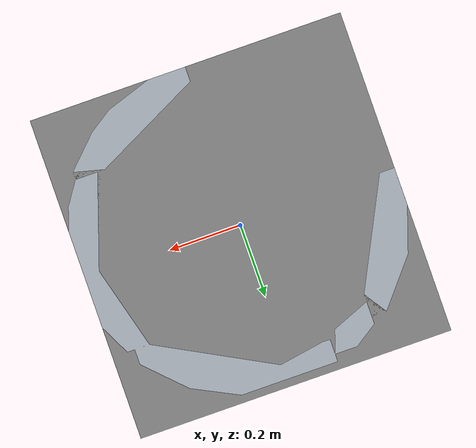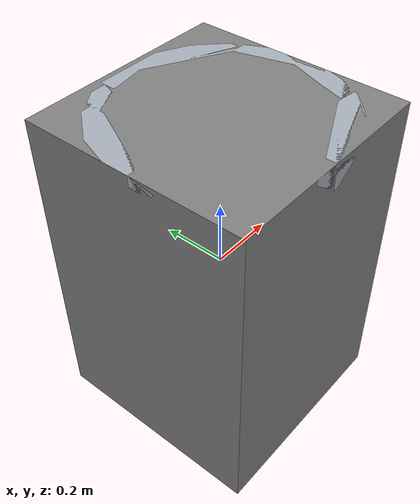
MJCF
<mujoco model="asset">
  <asset>
    <mesh name="bullet_cup_visual" file="bullet_cup.normalized.obj"/>
    <mesh name="bullet_cup_collision" file="bullet_cup.collision_box.obj"/>
  </asset>
  <worldbody><body name="bullet_cup">
    <geom type="mesh" mesh="bullet_cup_visual" contype="0" conaffinity="0" rgba="0.65 0.68 0.72 1"/>
    <geom type="mesh" mesh="bullet_cup_collision" density="1000"/>
  </body></worldbody>
</mujoco>
